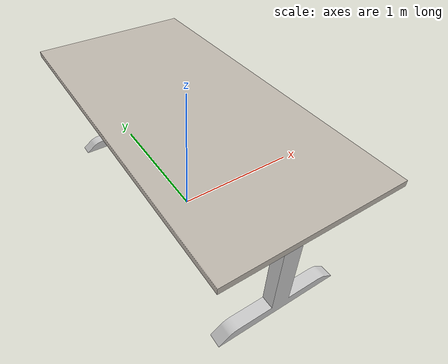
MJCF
<mujoco model="table">
  <default>
    <default class="visual">
      <geom group="2" type="mesh" contype="0" conaffinity="0"/>
    </default>
    <default class="collision">
      <geom group="3"/>
    </default>
  </default>
  <asset>
    <material name="TableLeg" specular="0.5" shininess="0.81" rgba="0.800000 0.800000 0.800000 1.000000"/>
    <texture type="2d" name="table_Color" file="table_Color.png"/>
    <material name="TableTop" texture="table_Color" specular="0.5" shininess="0.25"/>
    <mesh file="table_0.obj" scale="1.75 1.75 1.75"/>
    <mesh file="table_1.obj" scale="1.75 1.75 1.75"/>
  </asset>
  <worldbody>
    <body name="table">
      <geom name="table_0" mesh="table_0" material="TableLeg" class="visual"/>
      <geom name="table_1" mesh="table_1" material="TableTop" class="visual"/>
      <geom type="box" size="1.209 0.6045 0.45982145" pos="0 0 0.45982145" class="collision"/>
    </body>
  </worldbody>
</mujoco>
